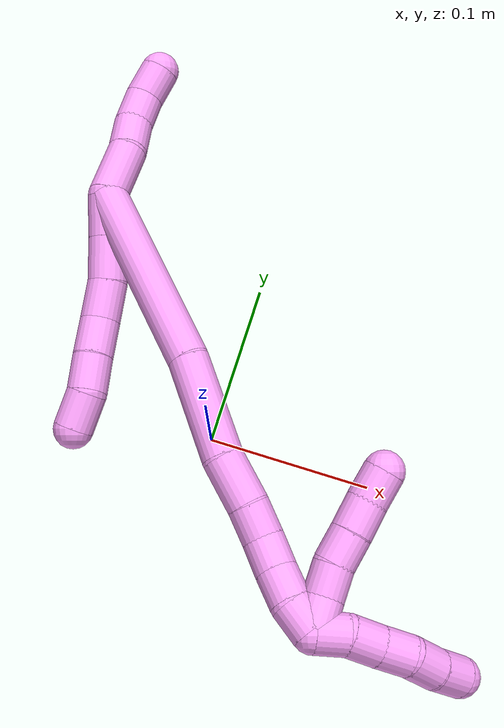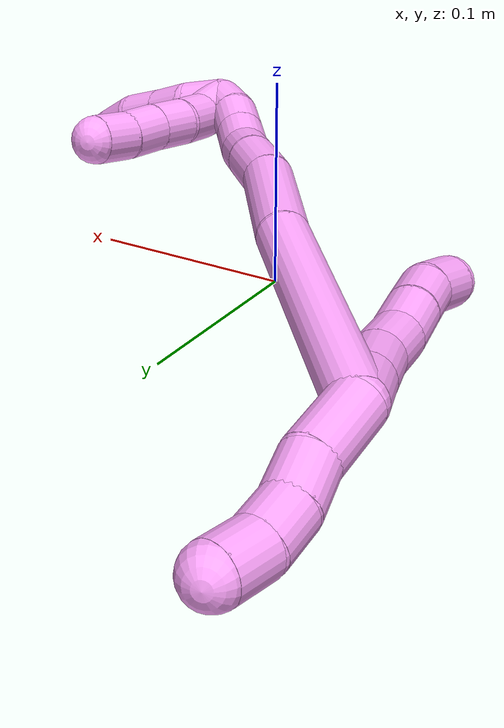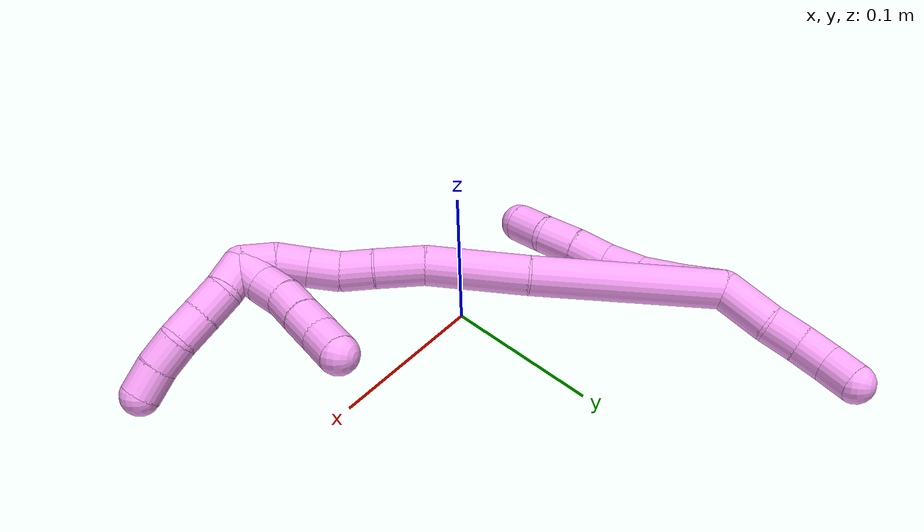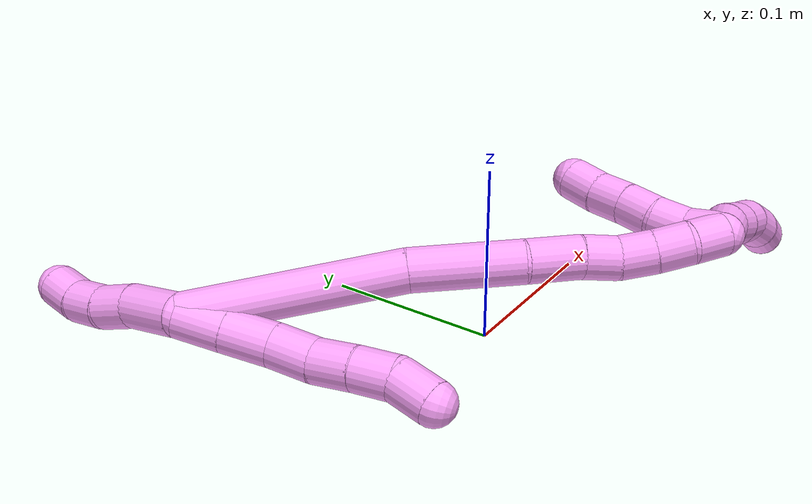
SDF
<sdf version="1.7">
 <world name="default">
  <model name="photoneo_s_sensor">
   <static>1</static>
   <pose>0 0 2 1.57079 1.57079 3.14159</pose>
   <link name="link">
    <inertial><mass>0.1</mass></inertial>
    <sensor name="sensor" type="depth">
     <update_rate>30</update_rate>
     <camera>
      <horizontal_fov>1.22</horizontal_fov>
      <image><width>1920</width><height>1200</height><format>B8G8R8</format></image>
      <clip><near>0.1</near><far>4</far></clip>
      <depth_camera><output>points</output></depth_camera>
     </camera>
     <plugin name="camera_plugin" filename="libgazebo_ros_depth_camera.so">
      <baseline>0.2</baseline>
      <alwaysOn>1</alwaysOn>
      <updateRate>0.0</updateRate>
      <cameraName>camera_ir</cameraName>
      <imageTopicName>/camera/color/image_raw</imageTopicName>
      <cameraInfoTopicName>/camera/color/camera_info</cameraInfoTopicName>
      <depthImageTopicName>/camera/depth/image_raw</depthImageTopicName>
      <depthImageCameraInfoTopicName>/camera/depth/camera_info</depthImageCameraInfoTopicName>
      <pointCloudTopicName>/camera/depth/points</pointCloudTopicName>
      <frameName>fr_optical</frameName>
      <pointCloudCutoff>0.1</pointCloudCutoff>
      <pointCloudCutoffMax>2.0</pointCloudCutoffMax>
      <distortionK1>0</distortionK1>
      <distortionK2>0</distortionK2>
      <distortionK3>0</distortionK3>
      <distortionT1>0</distortionT1>
      <distortionT2>0</distortionT2>
      <CxPrime>0</CxPrime>
      <Cx>0</Cx>
      <Cy>0</Cy>
      <focalLength>0</focalLength>
      <hackBaseline>0</hackBaseline>
     </plugin>
    </sensor>
   </link>
  </model>
  <model name="bin">
   <static>1</static>
   <link name="bottom">
    <collision name="collision-bottom">
     <pose>0 0 -0.01 0 -0 0</pose>
     <geometry><box><size>0.8 0.6 0.02</size></box></geometry>
     <surface>
      <friction><ode><mu>100</mu><mu2>100</mu2></ode></friction>
      <contact><collide_bitmask>65535</collide_bitmask></contact>
     </surface>
    </collision>
   </link>
   <link name="west_wall">
    <collision name="collision-west_wall">
     <pose>-0.41 0 0.1 0 -0 0</pose>
     <geometry><box><size>0.02 0.6 0.2</size></box></geometry>
     <surface>
      <friction><ode><mu>100</mu><mu2>100</mu2></ode></friction>
      <contact><collide_bitmask>65535</collide_bitmask></contact>
     </surface>
    </collision>
   </link>
   <link name="east_wall">
    <collision name="collision-east_wall">
     <pose>0.41 0 0.1 0 -0 0</pose>
     <geometry><box><size>0.02 0.6 0.2</size></box></geometry>
     <surface>
      <friction><ode><mu>100</mu><mu2>100</mu2></ode></friction>
      <contact><collide_bitmask>65535</collide_bitmask></contact>
     </surface>
    </collision>
   </link>
   <link name="south_wall">
    <collision name="collision-south_wall">
     <pose>0 -0.31 0.1 0 -0 0</pose>
     <geometry><box><size>0.8 0.02 0.2</size></box></geometry>
     <surface>
      <friction><ode><mu>100</mu><mu2>100</mu2></ode></friction>
      <contact><collide_bitmask>65535</collide_bitmask></contact>
     </surface>
    </collision>
   </link>
   <link name="north_wall">
    <collision name="collision-north_wall">
     <pose>0 0.31 0.1 0 -0 0</pose>
     <geometry><box><size>0.8 0.02 0.2</size></box></geometry>
     <surface>
      <friction><ode><mu>100</mu><mu2>100</mu2></ode></friction>
      <contact><collide_bitmask>65535</collide_bitmask></contact>
     </surface>
    </collision>
   </link>
  </model>
  <model name="4">
   <static>0</static>
   <link name="4">
    <collision name="collision-cylinder-e_1_2_8">
     <pose>-0.000346 0.00021 0.013379 -0.015687 -0.025841 0.000203</pose>
     <geometry><cylinder><radius>0.0125</radius><length>0.026771</length></cylinder></geometry>
     <surface>
      <friction><ode><mu>1.16</mu><mu2>1.16</mu2><slip1>0</slip1><slip2>0</slip2></ode></friction>
      <contact><ode><kp>1e+06</kp><kd>1</kd><max_vel>0</max_vel><min_depth>0.001</min_depth></ode></contact>
     </surface>
    </collision>
    <visual name="visual-cylinder-e_1_2_8">
     <pose>-0.000346 0.00021 0.013379 -0.015687 -0.025841 0.000203</pose>
     <geometry><cylinder><radius>0.0125</radius><length>0.026771</length></cylinder></geometry>
     <material><ambient>1 0.65098 0.996078 1</ambient></material>
    </visual>
    <collision name="collision-cylinder-e_2_8_9">
     <pose>-0.000943 -0.000123 0.040714 0.038868 -0.017988 -0.00035</pose>
     <geometry><cylinder><radius>0.0125</radius><length>0.027937</length></cylinder></geometry>
     <surface>
      <friction><ode><mu>1.16</mu><mu2>1.16</mu2><slip1>0</slip1><slip2>0</slip2></ode></friction>
      <contact><ode><kp>1e+06</kp><kd>1</kd><max_vel>0</max_vel><min_depth>0.001</min_depth></ode></contact>
     </surface>
    </collision>
    <visual name="visual-cylinder-e_2_8_9">
     <pose>-0.000943 -0.000123 0.040714 0.038868 -0.017988 -0.00035</pose>
     <geometry><cylinder><radius>0.0125</radius><length>0.027937</length></cylinder></geometry>
     <material><ambient>1 0.65098 0.996078 1</ambient></material>
    </visual>
    <collision name="collision-cylinder-e_3_9_10">
     <pose>-8.7e-05 -0.002856 0.067122 0.174092 0.08738 0.00763</pose>
     <geometry><cylinder><radius>0.0125</radius><length>0.025384</length></cylinder></geometry>
     <surface>
      <friction><ode><mu>1.16</mu><mu2>1.16</mu2><slip1>0</slip1><slip2>0</slip2></ode></friction>
      <contact><ode><kp>1e+06</kp><kd>1</kd><max_vel>0</max_vel><min_depth>0.001</min_depth></ode></contact>
     </surface>
    </collision>
    <visual name="visual-cylinder-e_3_9_10">
     <pose>-8.7e-05 -0.002856 0.067122 0.174092 0.08738 0.00763</pose>
     <geometry><cylinder><radius>0.0125</radius><length>0.025384</length></cylinder></geometry>
     <material><ambient>1 0.65098 0.996078 1</ambient></material>
    </visual>
    <collision name="collision-cylinder-e_4_10_11">
     <pose>0.000749 -0.008626 0.090848 0.307535 -0.022998 -0.003565</pose>
     <geometry><cylinder><radius>0.0125</radius><length>0.023663</length></cylinder></geometry>
     <surface>
      <friction><ode><mu>1.16</mu><mu2>1.16</mu2><slip1>0</slip1><slip2>0</slip2></ode></friction>
      <contact><ode><kp>1e+06</kp><kd>1</kd><max_vel>0</max_vel><min_depth>0.001</min_depth></ode></contact>
     </surface>
    </collision>
    <visual name="visual-cylinder-e_4_10_11">
     <pose>0.000749 -0.008626 0.090848 0.307535 -0.022998 -0.003565</pose>
     <geometry><cylinder><radius>0.0125</radius><length>0.023663</length></cylinder></geometry>
     <material><ambient>1 0.65098 0.996078 1</ambient></material>
    </visual>
    <collision name="collision-cylinder-e_5_11_12">
     <pose>0.000436 -0.014878 0.113244 0.235711 -0.003584 -0.000424</pose>
     <geometry><cylinder><radius>0.0125</radius><length>0.022878</length></cylinder></geometry>
     <surface>
      <friction><ode><mu>1.16</mu><mu2>1.16</mu2><slip1>0</slip1><slip2>0</slip2></ode></friction>
      <contact><ode><kp>1e+06</kp><kd>1</kd><max_vel>0</max_vel><min_depth>0.001</min_depth></ode></contact>
     </surface>
    </collision>
    <visual name="visual-cylinder-e_5_11_12">
     <pose>0.000436 -0.014878 0.113244 0.235711 -0.003584 -0.000424</pose>
     <geometry><cylinder><radius>0.0125</radius><length>0.022878</length></cylinder></geometry>
     <material><ambient>1 0.65098 0.996078 1</ambient></material>
    </visual>
    <collision name="collision-cylinder-e_6_12_6">
     <pose>0.003987 -0.01945 0.135321 0.171749 0.312524 0.027124</pose>
     <geometry><cylinder><radius>0.0125</radius><length>0.023367</length></cylinder></geometry>
     <surface>
      <friction><ode><mu>1.16</mu><mu2>1.16</mu2><slip1>0</slip1><slip2>0</slip2></ode></friction>
      <contact><ode><kp>1e+06</kp><kd>1</kd><max_vel>0</max_vel><min_depth>0.001</min_depth></ode></contact>
     </surface>
    </collision>
    <visual name="visual-cylinder-e_6_12_6">
     <pose>0.003987 -0.01945 0.135321 0.171749 0.312524 0.027124</pose>
     <geometry><cylinder><radius>0.0125</radius><length>0.023367</length></cylinder></geometry>
     <material><ambient>1 0.65098 0.996078 1</ambient></material>
    </visual>
    <collision name="collision-cylinder-e_1_2_13">
     <pose>-0.001202 0.008115 -0.015672 -2.6638 -0.067991 0.277481</pose>
     <geometry><cylinder><radius>0.0125</radius><length>0.035379</length></cylinder></geometry>
     <surface>
      <friction><ode><mu>1.16</mu><mu2>1.16</mu2><slip1>0</slip1><slip2>0</slip2></ode></friction>
      <contact><ode><kp>1e+06</kp><kd>1</kd><max_vel>0</max_vel><min_depth>0.001</min_depth></ode></contact>
     </surface>
    </collision>
    <visual name="visual-cylinder-e_1_2_13">
     <pose>-0.001202 0.008115 -0.015672 -2.6638 -0.067991 0.277481</pose>
     <geometry><cylinder><radius>0.0125</radius><length>0.035379</length></cylinder></geometry>
     <material><ambient>1 0.65098 0.996078 1</ambient></material>
    </visual>
    <collision name="collision-cylinder-e_2_13_14">
     <pose>-0.000785 0.021186 -0.041161 -2.67412 0.146108 -0.59643</pose>
     <geometry><cylinder><radius>0.0125</radius><length>0.02223</length></cylinder></geometry>
     <surface>
      <friction><ode><mu>1.16</mu><mu2>1.16</mu2><slip1>0</slip1><slip2>0</slip2></ode></friction>
      <contact><ode><kp>1e+06</kp><kd>1</kd><max_vel>0</max_vel><min_depth>0.001</min_depth></ode></contact>
     </surface>
    </collision>
    <visual name="visual-cylinder-e_2_13_14">
     <pose>-0.000785 0.021186 -0.041161 -2.67412 0.146108 -0.59643</pose>
     <geometry><cylinder><radius>0.0125</radius><length>0.02223</length></cylinder></geometry>
     <material><ambient>1 0.65098 0.996078 1</ambient></material>
    </visual>
    <collision name="collision-cylinder-e_3_14_15">
     <pose>5e-06 0.03056 -0.060451 -2.70513 -0.079017 0.352791</pose>
     <geometry><cylinder><radius>0.0125</radius><length>0.020972</length></cylinder></geometry>
     <surface>
      <friction><ode><mu>1.16</mu><mu2>1.16</mu2><slip1>0</slip1><slip2>0</slip2></ode></friction>
      <contact><ode><kp>1e+06</kp><kd>1</kd><max_vel>0</max_vel><min_depth>0.001</min_depth></ode></contact>
     </surface>
    </collision>
    <visual name="visual-cylinder-e_3_14_15">
     <pose>5e-06 0.03056 -0.060451 -2.70513 -0.079017 0.352791</pose>
     <geometry><cylinder><radius>0.0125</radius><length>0.020972</length></cylinder></geometry>
     <material><ambient>1 0.65098 0.996078 1</ambient></material>
    </visual>
    <collision name="collision-cylinder-e_4_15_5">
     <pose>-0.004271 0.038753 -0.079335 -2.76022 -0.327829 1.41692</pose>
     <geometry><cylinder><radius>0.0125</radius><length>0.021419</length></cylinder></geometry>
     <surface>
      <friction><ode><mu>1.16</mu><mu2>1.16</mu2><slip1>0</slip1><slip2>0</slip2></ode></friction>
      <contact><ode><kp>1e+06</kp><kd>1</kd><max_vel>0</max_vel><min_depth>0.001</min_depth></ode></contact>
     </surface>
    </collision>
    <visual name="visual-cylinder-e_4_15_5">
     <pose>-0.004271 0.038753 -0.079335 -2.76022 -0.327829 1.41692</pose>
     <geometry><cylinder><radius>0.0125</radius><length>0.021419</length></cylinder></geometry>
     <material><ambient>1 0.65098 0.996078 1</ambient></material>
    </visual>
    <collision name="collision-cylinder-e_1_2_16">
     <pose>-0.032491 -0.001187 0.052549 0.02259 -0.553662 -0.006419</pose>
     <geometry><cylinder><radius>0.0125</radius><length>0.123588</length></cylinder></geometry>
     <surface>
      <friction><ode><mu>1.16</mu><mu2>1.16</mu2><slip1>0</slip1><slip2>0</slip2></ode></friction>
      <contact><ode><kp>1e+06</kp><kd>1</kd><max_vel>0</max_vel><min_depth>0.001</min_depth></ode></contact>
     </surface>
    </collision>
    <visual name="visual-cylinder-e_1_2_16">
     <pose>-0.032491 -0.001187 0.052549 0.02259 -0.553662 -0.006419</pose>
     <geometry><cylinder><radius>0.0125</radius><length>0.123588</length></cylinder></geometry>
     <material><ambient>1 0.65098 0.996078 1</ambient></material>
    </visual>
    <collision name="collision-cylinder-e_2_16_17">
     <pose>-0.077971 -0.002978 0.134205 0.020733 -0.419624 -0.004415</pose>
     <geometry><cylinder><radius>0.0125</radius><length>0.06376</length></cylinder></geometry>
     <surface>
      <friction><ode><mu>1.16</mu><mu2>1.16</mu2><slip1>0</slip1><slip2>0</slip2></ode></friction>
      <contact><ode><kp>1e+06</kp><kd>1</kd><max_vel>0</max_vel><min_depth>0.001</min_depth></ode></contact>
     </surface>
    </collision>
    <visual name="visual-cylinder-e_2_16_17">
     <pose>-0.077971 -0.002978 0.134205 0.020733 -0.419624 -0.004415</pose>
     <geometry><cylinder><radius>0.0125</radius><length>0.06376</length></cylinder></geometry>
     <material><ambient>1 0.65098 0.996078 1</ambient></material>
    </visual>
    <collision name="collision-cylinder-e_3_17_18">
     <pose>-0.098425 -0.001542 0.17677 -0.150411 -0.501702 0.038611</pose>
     <geometry><cylinder><radius>0.0125</radius><length>0.031046</length></cylinder></geometry>
     <surface>
      <friction><ode><mu>1.16</mu><mu2>1.16</mu2><slip1>0</slip1><slip2>0</slip2></ode></friction>
      <contact><ode><kp>1e+06</kp><kd>1</kd><max_vel>0</max_vel><min_depth>0.001</min_depth></ode></contact>
     </surface>
    </collision>
    <visual name="visual-cylinder-e_3_17_18">
     <pose>-0.098425 -0.001542 0.17677 -0.150411 -0.501702 0.038611</pose>
     <geometry><cylinder><radius>0.0125</radius><length>0.031046</length></cylinder></geometry>
     <material><ambient>1 0.65098 0.996078 1</ambient></material>
    </visual>
    <collision name="collision-cylinder-e_4_18_19">
     <pose>-0.109878 0.002292 0.199816 -0.185054 -0.387983 0.036456</pose>
     <geometry><cylinder><radius>0.0125</radius><length>0.021079</length></cylinder></geometry>
     <surface>
      <friction><ode><mu>1.16</mu><mu2>1.16</mu2><slip1>0</slip1><slip2>0</slip2></ode></friction>
      <contact><ode><kp>1e+06</kp><kd>1</kd><max_vel>0</max_vel><min_depth>0.001</min_depth></ode></contact>
     </surface>
    </collision>
    <visual name="visual-cylinder-e_4_18_19">
     <pose>-0.109878 0.002292 0.199816 -0.185054 -0.387983 0.036456</pose>
     <geometry><cylinder><radius>0.0125</radius><length>0.021079</length></cylinder></geometry>
     <material><ambient>1 0.65098 0.996078 1</ambient></material>
    </visual>
    <collision name="collision-cylinder-e_5_19_20">
     <pose>-0.118797 0.003406 0.218255 0.076891 -0.507126 -0.019935</pose>
     <geometry><cylinder><radius>0.0125</radius><length>0.020307</length></cylinder></geometry>
     <surface>
      <friction><ode><mu>1.16</mu><mu2>1.16</mu2><slip1>0</slip1><slip2>0</slip2></ode></friction>
      <contact><ode><kp>1e+06</kp><kd>1</kd><max_vel>0</max_vel><min_depth>0.001</min_depth></ode></contact>
     </surface>
    </collision>
    <visual name="visual-cylinder-e_5_19_20">
     <pose>-0.118797 0.003406 0.218255 0.076891 -0.507126 -0.019935</pose>
     <geometry><cylinder><radius>0.0125</radius><length>0.020307</length></cylinder></geometry>
     <material><ambient>1 0.65098 0.996078 1</ambient></material>
    </visual>
    <collision name="collision-cylinder-e_6_20_21">
     <pose>-0.129173 0.001697 0.235529 0.121304 -0.570449 -0.035609</pose>
     <geometry><cylinder><radius>0.0125</radius><length>0.020168</length></cylinder></geometry>
     <surface>
      <friction><ode><mu>1.16</mu><mu2>1.16</mu2><slip1>0</slip1><slip2>0</slip2></ode></friction>
      <contact><ode><kp>1e+06</kp><kd>1</kd><max_vel>0</max_vel><min_depth>0.001</min_depth></ode></contact>
     </surface>
    </collision>
    <visual name="visual-cylinder-e_6_20_21">
     <pose>-0.129173 0.001697 0.235529 0.121304 -0.570449 -0.035609</pose>
     <geometry><cylinder><radius>0.0125</radius><length>0.020168</length></cylinder></geometry>
     <material><ambient>1 0.65098 0.996078 1</ambient></material>
    </visual>
    <collision name="collision-cylinder-e_7_21_1">
     <pose>-0.140927 0.00186 0.251655 -0.153399 -0.680549 0.054404</pose>
     <geometry><cylinder><radius>0.0125</radius><length>0.020051</length></cylinder></geometry>
     <surface>
      <friction><ode><mu>1.16</mu><mu2>1.16</mu2><slip1>0</slip1><slip2>0</slip2></ode></friction>
      <contact><ode><kp>1e+06</kp><kd>1</kd><max_vel>0</max_vel><min_depth>0.001</min_depth></ode></contact>
     </surface>
    </collision>
    <visual name="visual-cylinder-e_7_21_1">
     <pose>-0.140927 0.00186 0.251655 -0.153399 -0.680549 0.054404</pose>
     <geometry><cylinder><radius>0.0125</radius><length>0.020051</length></cylinder></geometry>
     <material><ambient>1 0.65098 0.996078 1</ambient></material>
    </visual>
    <collision name="collision-cylinder-e_1_1_22">
     <pose>-0.147965 0.007517 0.250439 -2.67727 -0.072959 0.306315</pose>
     <geometry><cylinder><radius>0.0125</radius><length>0.02</length></cylinder></geometry>
     <surface>
      <friction><ode><mu>1.16</mu><mu2>1.16</mu2><slip1>0</slip1><slip2>0</slip2></ode></friction>
      <contact><ode><kp>1e+06</kp><kd>1</kd><max_vel>0</max_vel><min_depth>0.001</min_depth></ode></contact>
     </surface>
    </collision>
    <visual name="visual-cylinder-e_1_1_22">
     <pose>-0.147965 0.007517 0.250439 -2.67727 -0.072959 0.306315</pose>
     <geometry><cylinder><radius>0.0125</radius><length>0.02</length></cylinder></geometry>
     <material><ambient>1 0.65098 0.996078 1</ambient></material>
    </visual>
    <collision name="collision-cylinder-e_2_22_23">
     <pose>-0.15087 0.014422 0.23207 -2.88906 -0.219356 1.42912</pose>
     <geometry><cylinder><radius>0.0125</radius><length>0.02</length></cylinder></geometry>
     <surface>
      <friction><ode><mu>1.16</mu><mu2>1.16</mu2><slip1>0</slip1><slip2>0</slip2></ode></friction>
      <contact><ode><kp>1e+06</kp><kd>1</kd><max_vel>0</max_vel><min_depth>0.001</min_depth></ode></contact>
     </surface>
    </collision>
    <visual name="visual-cylinder-e_2_22_23">
     <pose>-0.15087 0.014422 0.23207 -2.88906 -0.219356 1.42912</pose>
     <geometry><cylinder><radius>0.0125</radius><length>0.02</length></cylinder></geometry>
     <material><ambient>1 0.65098 0.996078 1</ambient></material>
    </visual>
    <collision name="collision-cylinder-e_3_23_24">
     <pose>-0.156659 0.020312 0.213957 -2.76247 -0.369657 1.54492</pose>
     <geometry><cylinder><radius>0.0125</radius><length>0.02</length></cylinder></geometry>
     <surface>
      <friction><ode><mu>1.16</mu><mu2>1.16</mu2><slip1>0</slip1><slip2>0</slip2></ode></friction>
      <contact><ode><kp>1e+06</kp><kd>1</kd><max_vel>0</max_vel><min_depth>0.001</min_depth></ode></contact>
     </surface>
    </collision>
    <visual name="visual-cylinder-e_3_23_24">
     <pose>-0.156659 0.020312 0.213957 -2.76247 -0.369657 1.54492</pose>
     <geometry><cylinder><radius>0.0125</radius><length>0.02</length></cylinder></geometry>
     <material><ambient>1 0.65098 0.996078 1</ambient></material>
    </visual>
    <collision name="collision-cylinder-e_4_24_25">
     <pose>-0.16338 0.027471 0.196543 -2.7408 -0.31608 1.33056</pose>
     <geometry><cylinder><radius>0.0125</radius><length>0.02</length></cylinder></geometry>
     <surface>
      <friction><ode><mu>1.16</mu><mu2>1.16</mu2><slip1>0</slip1><slip2>0</slip2></ode></friction>
      <contact><ode><kp>1e+06</kp><kd>1</kd><max_vel>0</max_vel><min_depth>0.001</min_depth></ode></contact>
     </surface>
    </collision>
    <visual name="visual-cylinder-e_4_24_25">
     <pose>-0.16338 0.027471 0.196543 -2.7408 -0.31608 1.33056</pose>
     <geometry><cylinder><radius>0.0125</radius><length>0.02</length></cylinder></geometry>
     <material><ambient>1 0.65098 0.996078 1</ambient></material>
    </visual>
    <collision name="collision-cylinder-e_5_25_4">
     <pose>-0.170434 0.034263 0.179136 -2.79934 -0.405598 1.74375</pose>
     <geometry><cylinder><radius>0.0125</radius><length>0.02</length></cylinder></geometry>
     <surface>
      <friction><ode><mu>1.16</mu><mu2>1.16</mu2><slip1>0</slip1><slip2>0</slip2></ode></friction>
      <contact><ode><kp>1e+06</kp><kd>1</kd><max_vel>0</max_vel><min_depth>0.001</min_depth></ode></contact>
     </surface>
    </collision>
    <visual name="visual-cylinder-e_5_25_4">
     <pose>-0.170434 0.034263 0.179136 -2.79934 -0.405598 1.74375</pose>
     <geometry><cylinder><radius>0.0125</radius><length>0.02</length></cylinder></geometry>
     <material><ambient>1 0.65098 0.996078 1</ambient></material>
    </visual>
    <collision name="collision-cylinder-e_1_1_26">
     <pose>-0.154526 0.009832 0.26029 -1.43392 -0.8169 0.721507</pose>
     <geometry><cylinder><radius>0.0125</radius><length>0.02</length></cylinder></geometry>
     <surface>
      <friction><ode><mu>1.16</mu><mu2>1.16</mu2><slip1>0</slip1><slip2>0</slip2></ode></friction>
      <contact><ode><kp>1e+06</kp><kd>1</kd><max_vel>0</max_vel><min_depth>0.001</min_depth></ode></contact>
     </surface>
    </collision>
    <visual name="visual-cylinder-e_1_1_26">
     <pose>-0.154526 0.009832 0.26029 -1.43392 -0.8169 0.721507</pose>
     <geometry><cylinder><radius>0.0125</radius><length>0.02</length></cylinder></geometry>
     <material><ambient>1 0.65098 0.996078 1</ambient></material>
    </visual>
    <collision name="collision-cylinder-e_2_26_27">
     <pose>-0.16773 0.02386 0.264759 -1.11702 -0.632798 0.403596</pose>
     <geometry><cylinder><radius>0.0125</radius><length>0.02</length></cylinder></geometry>
     <surface>
      <friction><ode><mu>1.16</mu><mu2>1.16</mu2><slip1>0</slip1><slip2>0</slip2></ode></friction>
      <contact><ode><kp>1e+06</kp><kd>1</kd><max_vel>0</max_vel><min_depth>0.001</min_depth></ode></contact>
     </surface>
    </collision>
    <visual name="visual-cylinder-e_2_26_27">
     <pose>-0.16773 0.02386 0.264759 -1.11702 -0.632798 0.403596</pose>
     <geometry><cylinder><radius>0.0125</radius><length>0.02</length></cylinder></geometry>
     <material><ambient>1 0.65098 0.996078 1</ambient></material>
    </visual>
    <collision name="collision-cylinder-e_3_27_28">
     <pose>-0.180007 0.038124 0.271502 -1.14195 -0.689632 0.45348</pose>
     <geometry><cylinder><radius>0.0125</radius><length>0.02</length></cylinder></geometry>
     <surface>
      <friction><ode><mu>1.16</mu><mu2>1.16</mu2><slip1>0</slip1><slip2>0</slip2></ode></friction>
      <contact><ode><kp>1e+06</kp><kd>1</kd><max_vel>0</max_vel><min_depth>0.001</min_depth></ode></contact>
     </surface>
    </collision>
    <visual name="visual-cylinder-e_3_27_28">
     <pose>-0.180007 0.038124 0.271502 -1.14195 -0.689632 0.45348</pose>
     <geometry><cylinder><radius>0.0125</radius><length>0.02</length></cylinder></geometry>
     <material><ambient>1 0.65098 0.996078 1</ambient></material>
    </visual>
    <collision name="collision-cylinder-e_4_28_29">
     <pose>-0.190278 0.053254 0.279055 -1.07909 -0.401598 0.24257</pose>
     <geometry><cylinder><radius>0.0125</radius><length>0.02</length></cylinder></geometry>
     <surface>
      <friction><ode><mu>1.16</mu><mu2>1.16</mu2><slip1>0</slip1><slip2>0</slip2></ode></friction>
      <contact><ode><kp>1e+06</kp><kd>1</kd><max_vel>0</max_vel><min_depth>0.001</min_depth></ode></contact>
     </surface>
    </collision>
    <visual name="visual-cylinder-e_4_28_29">
     <pose>-0.190278 0.053254 0.279055 -1.07909 -0.401598 0.24257</pose>
     <geometry><cylinder><radius>0.0125</radius><length>0.02</length></cylinder></geometry>
     <material><ambient>1 0.65098 0.996078 1</ambient></material>
    </visual>
    <collision name="collision-cylinder-e_5_29_3">
     <pose>-0.197739 0.070153 0.286597 -1.2219 -0.363151 0.255755</pose>
     <geometry><cylinder><radius>0.0125</radius><length>0.02</length></cylinder></geometry>
     <surface>
      <friction><ode><mu>1.16</mu><mu2>1.16</mu2><slip1>0</slip1><slip2>0</slip2></ode></friction>
      <contact><ode><kp>1e+06</kp><kd>1</kd><max_vel>0</max_vel><min_depth>0.001</min_depth></ode></contact>
     </surface>
    </collision>
    <visual name="visual-cylinder-e_5_29_3">
     <pose>-0.197739 0.070153 0.286597 -1.2219 -0.363151 0.255755</pose>
     <geometry><cylinder><radius>0.0125</radius><length>0.02</length></cylinder></geometry>
     <material><ambient>1 0.65098 0.996078 1</ambient></material>
    </visual>
    <collision name="collision-sphere-3">
     <pose>-0.201292 0.078937 0.289793 0 -0 0</pose>
     <geometry><sphere><radius>0.0125</radius></sphere></geometry>
     <surface>
      <friction><ode><mu>1.16</mu><mu2>1.16</mu2><slip1>0</slip1><slip2>0</slip2></ode></friction>
      <contact><ode><kp>1e+06</kp><kd>1</kd><max_vel>0</max_vel><min_depth>0.001</min_depth></ode></contact>
     </surface>
    </collision>
    <visual name="visual-sphere-3">
     <pose>-0.201292 0.078937 0.289793 0 -0 0</pose>
     <geometry><sphere><radius>0.0125</radius></sphere></geometry>
     <material><ambient>1 0.65098 0.996078 1</ambient></material>
    </visual>
    <collision name="collision-sphere-29">
     <pose>-0.194187 0.061368 0.283401 0 -0 0</pose>
     <geometry><sphere><radius>0.0125</radius></sphere></geometry>
     <surface>
      <friction><ode><mu>1.16</mu><mu2>1.16</mu2><slip1>0</slip1><slip2>0</slip2></ode></friction>
      <contact><ode><kp>1e+06</kp><kd>1</kd><max_vel>0</max_vel><min_depth>0.001</min_depth></ode></contact>
     </surface>
    </collision>
    <visual name="visual-sphere-29">
     <pose>-0.194187 0.061368 0.283401 0 -0 0</pose>
     <geometry><sphere><radius>0.0125</radius></sphere></geometry>
     <material><ambient>1 0.65098 0.996078 1</ambient></material>
    </visual>
    <collision name="collision-sphere-28">
     <pose>-0.186369 0.04514 0.27471 0 -0 0</pose>
     <geometry><sphere><radius>0.0125</radius></sphere></geometry>
     <surface>
      <friction><ode><mu>1.16</mu><mu2>1.16</mu2><slip1>0</slip1><slip2>0</slip2></ode></friction>
      <contact><ode><kp>1e+06</kp><kd>1</kd><max_vel>0</max_vel><min_depth>0.001</min_depth></ode></contact>
     </surface>
    </collision>
    <visual name="visual-sphere-28">
     <pose>-0.186369 0.04514 0.27471 0 -0 0</pose>
     <geometry><sphere><radius>0.0125</radius></sphere></geometry>
     <material><ambient>1 0.65098 0.996078 1</ambient></material>
    </visual>
    <collision name="collision-sphere-27">
     <pose>-0.173644 0.031108 0.268294 0 -0 0</pose>
     <geometry><sphere><radius>0.0125</radius></sphere></geometry>
     <surface>
      <friction><ode><mu>1.16</mu><mu2>1.16</mu2><slip1>0</slip1><slip2>0</slip2></ode></friction>
      <contact><ode><kp>1e+06</kp><kd>1</kd><max_vel>0</max_vel><min_depth>0.001</min_depth></ode></contact>
     </surface>
    </collision>
    <visual name="visual-sphere-27">
     <pose>-0.173644 0.031108 0.268294 0 -0 0</pose>
     <geometry><sphere><radius>0.0125</radius></sphere></geometry>
     <material><ambient>1 0.65098 0.996078 1</ambient></material>
    </visual>
    <collision name="collision-sphere-26">
     <pose>-0.161816 0.016613 0.261224 0 -0 0</pose>
     <geometry><sphere><radius>0.0125</radius></sphere></geometry>
     <surface>
      <friction><ode><mu>1.16</mu><mu2>1.16</mu2><slip1>0</slip1><slip2>0</slip2></ode></friction>
      <contact><ode><kp>1e+06</kp><kd>1</kd><max_vel>0</max_vel><min_depth>0.001</min_depth></ode></contact>
     </surface>
    </collision>
    <visual name="visual-sphere-26">
     <pose>-0.161816 0.016613 0.261224 0 -0 0</pose>
     <geometry><sphere><radius>0.0125</radius></sphere></geometry>
     <material><ambient>1 0.65098 0.996078 1</ambient></material>
    </visual>
    <collision name="collision-sphere-4">
     <pose>-0.17438 0.037347 0.17048 0 -0 0</pose>
     <geometry><sphere><radius>0.0125</radius></sphere></geometry>
     <surface>
      <friction><ode><mu>1.16</mu><mu2>1.16</mu2><slip1>0</slip1><slip2>0</slip2></ode></friction>
      <contact><ode><kp>1e+06</kp><kd>1</kd><max_vel>0</max_vel><min_depth>0.001</min_depth></ode></contact>
     </surface>
    </collision>
    <visual name="visual-sphere-4">
     <pose>-0.17438 0.037347 0.17048 0 -0 0</pose>
     <geometry><sphere><radius>0.0125</radius></sphere></geometry>
     <material><ambient>1 0.65098 0.996078 1</ambient></material>
    </visual>
    <collision name="collision-sphere-25">
     <pose>-0.166488 0.031179 0.187792 0 -0 0</pose>
     <geometry><sphere><radius>0.0125</radius></sphere></geometry>
     <surface>
      <friction><ode><mu>1.16</mu><mu2>1.16</mu2><slip1>0</slip1><slip2>0</slip2></ode></friction>
      <contact><ode><kp>1e+06</kp><kd>1</kd><max_vel>0</max_vel><min_depth>0.001</min_depth></ode></contact>
     </surface>
    </collision>
    <visual name="visual-sphere-25">
     <pose>-0.166488 0.031179 0.187792 0 -0 0</pose>
     <geometry><sphere><radius>0.0125</radius></sphere></geometry>
     <material><ambient>1 0.65098 0.996078 1</ambient></material>
    </visual>
    <collision name="collision-sphere-24">
     <pose>-0.160272 0.023763 0.205295 0 -0 0</pose>
     <geometry><sphere><radius>0.0125</radius></sphere></geometry>
     <surface>
      <friction><ode><mu>1.16</mu><mu2>1.16</mu2><slip1>0</slip1><slip2>0</slip2></ode></friction>
      <contact><ode><kp>1e+06</kp><kd>1</kd><max_vel>0</max_vel><min_depth>0.001</min_depth></ode></contact>
     </surface>
    </collision>
    <visual name="visual-sphere-24">
     <pose>-0.160272 0.023763 0.205295 0 -0 0</pose>
     <geometry><sphere><radius>0.0125</radius></sphere></geometry>
     <material><ambient>1 0.65098 0.996078 1</ambient></material>
    </visual>
    <collision name="collision-sphere-23">
     <pose>-0.153046 0.016861 0.22262 0 -0 0</pose>
     <geometry><sphere><radius>0.0125</radius></sphere></geometry>
     <surface>
      <friction><ode><mu>1.16</mu><mu2>1.16</mu2><slip1>0</slip1><slip2>0</slip2></ode></friction>
      <contact><ode><kp>1e+06</kp><kd>1</kd><max_vel>0</max_vel><min_depth>0.001</min_depth></ode></contact>
     </surface>
    </collision>
    <visual name="visual-sphere-23">
     <pose>-0.153046 0.016861 0.22262 0 -0 0</pose>
     <geometry><sphere><radius>0.0125</radius></sphere></geometry>
     <material><ambient>1 0.65098 0.996078 1</ambient></material>
    </visual>
    <collision name="collision-sphere-22">
     <pose>-0.148694 0.011984 0.241521 0 -0 0</pose>
     <geometry><sphere><radius>0.0125</radius></sphere></geometry>
     <surface>
      <friction><ode><mu>1.16</mu><mu2>1.16</mu2><slip1>0</slip1><slip2>0</slip2></ode></friction>
      <contact><ode><kp>1e+06</kp><kd>1</kd><max_vel>0</max_vel><min_depth>0.001</min_depth></ode></contact>
     </surface>
    </collision>
    <visual name="visual-sphere-22">
     <pose>-0.148694 0.011984 0.241521 0 -0 0</pose>
     <geometry><sphere><radius>0.0125</radius></sphere></geometry>
     <material><ambient>1 0.65098 0.996078 1</ambient></material>
    </visual>
    <collision name="collision-sphere-1">
     <pose>-0.147236 0.003051 0.259356 0 -0 0</pose>
     <geometry><sphere><radius>0.0125</radius></sphere></geometry>
     <surface>
      <friction><ode><mu>1.16</mu><mu2>1.16</mu2><slip1>0</slip1><slip2>0</slip2></ode></friction>
      <contact><ode><kp>1e+06</kp><kd>1</kd><max_vel>0</max_vel><min_depth>0.001</min_depth></ode></contact>
     </surface>
    </collision>
    <visual name="visual-sphere-1">
     <pose>-0.147236 0.003051 0.259356 0 -0 0</pose>
     <geometry><sphere><radius>0.0125</radius></sphere></geometry>
     <material><ambient>1 0.65098 0.996078 1</ambient></material>
    </visual>
    <collision name="collision-sphere-21">
     <pose>-0.134619 0.00067 0.243955 0 -0 0</pose>
     <geometry><sphere><radius>0.0125</radius></sphere></geometry>
     <surface>
      <friction><ode><mu>1.16</mu><mu2>1.16</mu2><slip1>0</slip1><slip2>0</slip2></ode></friction>
      <contact><ode><kp>1e+06</kp><kd>1</kd><max_vel>0</max_vel><min_depth>0.001</min_depth></ode></contact>
     </surface>
    </collision>
    <visual name="visual-sphere-21">
     <pose>-0.134619 0.00067 0.243955 0 -0 0</pose>
     <geometry><sphere><radius>0.0125</radius></sphere></geometry>
     <material><ambient>1 0.65098 0.996078 1</ambient></material>
    </visual>
    <collision name="collision-sphere-12">
     <pose>0.000395 -0.01755 0.124367 0 -0 0</pose>
     <geometry><sphere><radius>0.0125</radius></sphere></geometry>
     <surface>
      <friction><ode><mu>1.16</mu><mu2>1.16</mu2><slip1>0</slip1><slip2>0</slip2></ode></friction>
      <contact><ode><kp>1e+06</kp><kd>1</kd><max_vel>0</max_vel><min_depth>0.001</min_depth></ode></contact>
     </surface>
    </collision>
    <visual name="visual-sphere-12">
     <pose>0.000395 -0.01755 0.124367 0 -0 0</pose>
     <geometry><sphere><radius>0.0125</radius></sphere></geometry>
     <material><ambient>1 0.65098 0.996078 1</ambient></material>
    </visual>
    <collision name="collision-sphere-11">
     <pose>0.000477 -0.012207 0.102122 0 -0 0</pose>
     <geometry><sphere><radius>0.0125</radius></sphere></geometry>
     <surface>
      <friction><ode><mu>1.16</mu><mu2>1.16</mu2><slip1>0</slip1><slip2>0</slip2></ode></friction>
      <contact><ode><kp>1e+06</kp><kd>1</kd><max_vel>0</max_vel><min_depth>0.001</min_depth></ode></contact>
     </surface>
    </collision>
    <visual name="visual-sphere-11">
     <pose>0.000477 -0.012207 0.102122 0 -0 0</pose>
     <geometry><sphere><radius>0.0125</radius></sphere></geometry>
     <material><ambient>1 0.65098 0.996078 1</ambient></material>
    </visual>
    <collision name="collision-sphere-10">
     <pose>0.001021 -0.005046 0.079575 0 -0 0</pose>
     <geometry><sphere><radius>0.0125</radius></sphere></geometry>
     <surface>
      <friction><ode><mu>1.16</mu><mu2>1.16</mu2><slip1>0</slip1><slip2>0</slip2></ode></friction>
      <contact><ode><kp>1e+06</kp><kd>1</kd><max_vel>0</max_vel><min_depth>0.001</min_depth></ode></contact>
     </surface>
    </collision>
    <visual name="visual-sphere-10">
     <pose>0.001021 -0.005046 0.079575 0 -0 0</pose>
     <geometry><sphere><radius>0.0125</radius></sphere></geometry>
     <material><ambient>1 0.65098 0.996078 1</ambient></material>
    </visual>
    <collision name="collision-sphere-9">
     <pose>-0.001194 -0.000666 0.054669 0 -0 0</pose>
     <geometry><sphere><radius>0.0125</radius></sphere></geometry>
     <surface>
      <friction><ode><mu>1.16</mu><mu2>1.16</mu2><slip1>0</slip1><slip2>0</slip2></ode></friction>
      <contact><ode><kp>1e+06</kp><kd>1</kd><max_vel>0</max_vel><min_depth>0.001</min_depth></ode></contact>
     </surface>
    </collision>
    <visual name="visual-sphere-9">
     <pose>-0.001194 -0.000666 0.054669 0 -0 0</pose>
     <geometry><sphere><radius>0.0125</radius></sphere></geometry>
     <material><ambient>1 0.65098 0.996078 1</ambient></material>
    </visual>
    <collision name="collision-sphere-2">
     <geometry><sphere><radius>0.0125</radius></sphere></geometry>
     <surface>
      <friction><ode><mu>1.16</mu><mu2>1.16</mu2><slip1>0</slip1><slip2>0</slip2></ode></friction>
      <contact><ode><kp>1e+06</kp><kd>1</kd><max_vel>0</max_vel><min_depth>0.001</min_depth></ode></contact>
     </surface>
    </collision>
    <visual name="visual-sphere-2">
     <geometry><sphere><radius>0.0125</radius></sphere></geometry>
     <material><ambient>1 0.65098 0.996078 1</ambient></material>
    </visual>
    <collision name="collision-sphere-19">
     <pose>-0.113865 0.004087 0.209406 0 -0 0</pose>
     <geometry><sphere><radius>0.0125</radius></sphere></geometry>
     <surface>
      <friction><ode><mu>1.16</mu><mu2>1.16</mu2><slip1>0</slip1><slip2>0</slip2></ode></friction>
      <contact><ode><kp>1e+06</kp><kd>1</kd><max_vel>0</max_vel><min_depth>0.001</min_depth></ode></contact>
     </surface>
    </collision>
    <visual name="visual-sphere-19">
     <pose>-0.113865 0.004087 0.209406 0 -0 0</pose>
     <geometry><sphere><radius>0.0125</radius></sphere></geometry>
     <material><ambient>1 0.65098 0.996078 1</ambient></material>
    </visual>
    <collision name="collision-sphere-8">
     <pose>-0.000692 0.00042 0.026758 0 -0 0</pose>
     <geometry><sphere><radius>0.0125</radius></sphere></geometry>
     <surface>
      <friction><ode><mu>1.16</mu><mu2>1.16</mu2><slip1>0</slip1><slip2>0</slip2></ode></friction>
      <contact><ode><kp>1e+06</kp><kd>1</kd><max_vel>0</max_vel><min_depth>0.001</min_depth></ode></contact>
     </surface>
    </collision>
    <visual name="visual-sphere-8">
     <pose>-0.000692 0.00042 0.026758 0 -0 0</pose>
     <geometry><sphere><radius>0.0125</radius></sphere></geometry>
     <material><ambient>1 0.65098 0.996078 1</ambient></material>
    </visual>
    <collision name="collision-sphere-6">
     <pose>0.007579 -0.02135 0.146275 0 -0 0</pose>
     <geometry><sphere><radius>0.0125</radius></sphere></geometry>
     <surface>
      <friction><ode><mu>1.16</mu><mu2>1.16</mu2><slip1>0</slip1><slip2>0</slip2></ode></friction>
      <contact><ode><kp>1e+06</kp><kd>1</kd><max_vel>0</max_vel><min_depth>0.001</min_depth></ode></contact>
     </surface>
    </collision>
    <visual name="visual-sphere-6">
     <pose>0.007579 -0.02135 0.146275 0 -0 0</pose>
     <geometry><sphere><radius>0.0125</radius></sphere></geometry>
     <material><ambient>1 0.65098 0.996078 1</ambient></material>
    </visual>
    <collision name="collision-sphere-13">
     <pose>-0.002404 0.016231 -0.031344 0 -0 0</pose>
     <geometry><sphere><radius>0.0125</radius></sphere></geometry>
     <surface>
      <friction><ode><mu>1.16</mu><mu2>1.16</mu2><slip1>0</slip1><slip2>0</slip2></ode></friction>
      <contact><ode><kp>1e+06</kp><kd>1</kd><max_vel>0</max_vel><min_depth>0.001</min_depth></ode></contact>
     </surface>
    </collision>
    <visual name="visual-sphere-13">
     <pose>-0.002404 0.016231 -0.031344 0 -0 0</pose>
     <geometry><sphere><radius>0.0125</radius></sphere></geometry>
     <material><ambient>1 0.65098 0.996078 1</ambient></material>
    </visual>
    <collision name="collision-sphere-14">
     <pose>0.000833 0.026141 -0.050978 0 -0 0</pose>
     <geometry><sphere><radius>0.0125</radius></sphere></geometry>
     <surface>
      <friction><ode><mu>1.16</mu><mu2>1.16</mu2><slip1>0</slip1><slip2>0</slip2></ode></friction>
      <contact><ode><kp>1e+06</kp><kd>1</kd><max_vel>0</max_vel><min_depth>0.001</min_depth></ode></contact>
     </surface>
    </collision>
    <visual name="visual-sphere-14">
     <pose>0.000833 0.026141 -0.050978 0 -0 0</pose>
     <geometry><sphere><radius>0.0125</radius></sphere></geometry>
     <material><ambient>1 0.65098 0.996078 1</ambient></material>
    </visual>
    <collision name="collision-sphere-15">
     <pose>-0.000823 0.034979 -0.069924 0 -0 0</pose>
     <geometry><sphere><radius>0.0125</radius></sphere></geometry>
     <surface>
      <friction><ode><mu>1.16</mu><mu2>1.16</mu2><slip1>0</slip1><slip2>0</slip2></ode></friction>
      <contact><ode><kp>1e+06</kp><kd>1</kd><max_vel>0</max_vel><min_depth>0.001</min_depth></ode></contact>
     </surface>
    </collision>
    <visual name="visual-sphere-15">
     <pose>-0.000823 0.034979 -0.069924 0 -0 0</pose>
     <geometry><sphere><radius>0.0125</radius></sphere></geometry>
     <material><ambient>1 0.65098 0.996078 1</ambient></material>
    </visual>
    <collision name="collision-sphere-5">
     <pose>-0.007719 0.042527 -0.088746 0 -0 0</pose>
     <geometry><sphere><radius>0.0125</radius></sphere></geometry>
     <surface>
      <friction><ode><mu>1.16</mu><mu2>1.16</mu2><slip1>0</slip1><slip2>0</slip2></ode></friction>
      <contact><ode><kp>1e+06</kp><kd>1</kd><max_vel>0</max_vel><min_depth>0.001</min_depth></ode></contact>
     </surface>
    </collision>
    <visual name="visual-sphere-5">
     <pose>-0.007719 0.042527 -0.088746 0 -0 0</pose>
     <geometry><sphere><radius>0.0125</radius></sphere></geometry>
     <material><ambient>1 0.65098 0.996078 1</ambient></material>
    </visual>
    <collision name="collision-sphere-16">
     <pose>-0.064983 -0.002375 0.105097 0 -0 0</pose>
     <geometry><sphere><radius>0.0125</radius></sphere></geometry>
     <surface>
      <friction><ode><mu>1.16</mu><mu2>1.16</mu2><slip1>0</slip1><slip2>0</slip2></ode></friction>
      <contact><ode><kp>1e+06</kp><kd>1</kd><max_vel>0</max_vel><min_depth>0.001</min_depth></ode></contact>
     </surface>
    </collision>
    <visual name="visual-sphere-16">
     <pose>-0.064983 -0.002375 0.105097 0 -0 0</pose>
     <geometry><sphere><radius>0.0125</radius></sphere></geometry>
     <material><ambient>1 0.65098 0.996078 1</ambient></material>
    </visual>
    <collision name="collision-sphere-17">
     <pose>-0.09096 -0.003582 0.163313 0 -0 0</pose>
     <geometry><sphere><radius>0.0125</radius></sphere></geometry>
     <surface>
      <friction><ode><mu>1.16</mu><mu2>1.16</mu2><slip1>0</slip1><slip2>0</slip2></ode></friction>
      <contact><ode><kp>1e+06</kp><kd>1</kd><max_vel>0</max_vel><min_depth>0.001</min_depth></ode></contact>
     </surface>
    </collision>
    <visual name="visual-sphere-17">
     <pose>-0.09096 -0.003582 0.163313 0 -0 0</pose>
     <geometry><sphere><radius>0.0125</radius></sphere></geometry>
     <material><ambient>1 0.65098 0.996078 1</ambient></material>
    </visual>
    <collision name="collision-sphere-18">
     <pose>-0.105891 0.000497 0.190226 0 -0 0</pose>
     <geometry><sphere><radius>0.0125</radius></sphere></geometry>
     <surface>
      <friction><ode><mu>1.16</mu><mu2>1.16</mu2><slip1>0</slip1><slip2>0</slip2></ode></friction>
      <contact><ode><kp>1e+06</kp><kd>1</kd><max_vel>0</max_vel><min_depth>0.001</min_depth></ode></contact>
     </surface>
    </collision>
    <visual name="visual-sphere-18">
     <pose>-0.105891 0.000497 0.190226 0 -0 0</pose>
     <geometry><sphere><radius>0.0125</radius></sphere></geometry>
     <material><ambient>1 0.65098 0.996078 1</ambient></material>
    </visual>
    <collision name="collision-sphere-20">
     <pose>-0.123728 0.002724 0.227104 0 -0 0</pose>
     <geometry><sphere><radius>0.0125</radius></sphere></geometry>
     <surface>
      <friction><ode><mu>1.16</mu><mu2>1.16</mu2><slip1>0</slip1><slip2>0</slip2></ode></friction>
      <contact><ode><kp>1e+06</kp><kd>1</kd><max_vel>0</max_vel><min_depth>0.001</min_depth></ode></contact>
     </surface>
    </collision>
    <visual name="visual-sphere-20">
     <pose>-0.123728 0.002724 0.227104 0 -0 0</pose>
     <geometry><sphere><radius>0.0125</radius></sphere></geometry>
     <material><ambient>1 0.65098 0.996078 1</ambient></material>
    </visual>
    <inertial>
     <pose>-0.074483 0.009265 0.125776 0 -0 0</pose>
     <mass>0.75</mass>
     <inertia>
      <ixx>0.000189</ixx>
      <ixy>0</ixy>
      <ixz>0</ixz>
      <iyy>0.000226</iyy>
      <iyz>0</iyz>
      <izz>0.000118</izz>
     </inertia>
    </inertial>
   </link>
   <pose>-0.107963 0.12453 0.025581 -1.79672 0.561028 -2.96193</pose>
  </model>
 </world>
</sdf>
